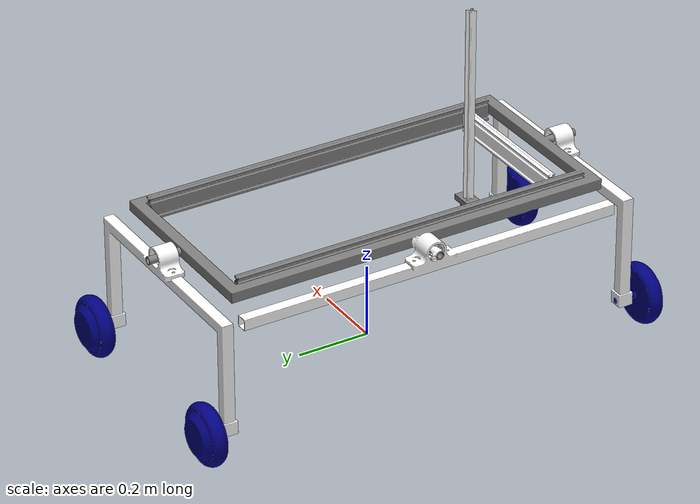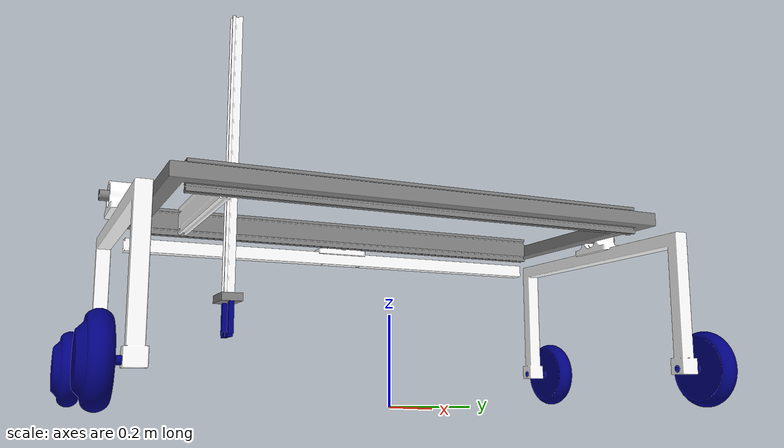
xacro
<?xml version="1.0"?>
<robot name="selena" xmlns:xacro="http://www.ros.org/wiki/xacro" >

    <xacro:include filename="common_properties.xacro" />
    <xacro:include filename="mobile_base.xacro" />
    <xacro:include filename="gripper.xacro" />
    <xacro:include filename="ros2_control.xacro" />

</robot>

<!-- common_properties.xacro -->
<robot xmlns:xacro="http://www.ros.org/wiki/xacro">

    <material name="white">
        <color rgba="1 1 1 1" />
    </material>

    <material name="grey">
        <color rgba="0.5 0.5 0.5 1"/>
    </material>

    <material name="blue">
        <color rgba="0 0 0.5 1"/>
    </material>

</robot>

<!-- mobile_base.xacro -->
<robot xmlns:xacro="http://www.ros.org/wiki/xacro" >

    <xacro:property name="frame_ground_offset" value="0.4125" />

    <xacro:property name="leg_offset_y" value="0.5795" />
    <xacro:property name="leg_offset_z" value="0.03" />

    <xacro:property name="back_bar_offset_x" value="0.305" />
    <xacro:property name="back_bar_offset_z" value="0.045" />

    <xacro:property name="front_wheel_offset_x" value="0.275" />
    <xacro:property name="back_wheel_offset_x" value="0.305" />
    <xacro:property name="wheel_offset_y" value="0.058" />
    <xacro:property name="wheel_offset_z" value="0.300" />

    <xacro:property name="z_axis_offset_x" value="0.025" />
    <xacro:property name="z_axis_offset_z" value="0.35" />

    <xacro:property name="x_axis_travel" value="0.845" />
    <xacro:property name="y_axis_travel" value="0.29" />
    <xacro:property name="z_axis_travel" value="0.25" />

    <xacro:property name="wheel_radius" value="0.0825" />

    ``----- LINKS -----

    <link name="base_footprint" />

    <link name="base_link">
        <visual>
            <geometry>
                <mesh filename="package://robot_description/meshes/main_frame.stl" scale="0.001 0.001 0.001" />
            </geometry>
            <origin xyz="0 0 0" rpy="0 0 0" />
            <material name="grey" />
        </visual>

        <collision>
            <origin xyz="0 0 0" rpy="0 0 0" />
            <geometry>
                <box size="0.614 1.338 0.06" />
            </geometry>
        </collision>

        <inertial>
            <origin xyz="0.0 0.0 0.0" rpy="0 0 0"/>
            <mass value="6.54888"/>
            <inertia
                ixx="0.9946" ixy="0.0" ixz="0.0"
                iyy="0.3190" iyz="0.0"
                izz="1.311" />
        </inertial>
    </link>

    <link name="gantry_origin_link"/>

    <link name="left_leg_link">
        <visual>
            <geometry>
                <mesh filename="package://robot_description/meshes/leg.stl" scale="0.001 0.001 0.001"/>
            </geometry>
            <origin xyz="0 0 0" rpy="0 0 0" />
            <material name="white" />
        </visual>

        <collision>
            <origin xyz="0 0 -0.15" rpy="0 0 0" />
            <geometry>
                <box size="0.625 0.054 0.37455" />
            </geometry>
        </collision>

        <inertial>
            <origin xyz="-0.014231 0.0 -0.143044" rpy="0 0 0"/>
            <mass value="2.33849"/>
            <inertia
                ixx="0.03813" ixy="0.0" ixz="0.0"
                iyy="0.1843" iyz="0.0"
                izz="0.1468" />
        </inertial>
    </link>

    <link name="right_leg_link">
        <visual>
            <geometry>
                <mesh filename="package://robot_description/meshes/leg.stl" scale="0.001 0.001 0.001"/>
            </geometry>
            <origin xyz="0 0 0" rpy="0 0 0" />
            <material name="white" />
        </visual>

        <collision>
            <origin xyz="0 0 -0.15" rpy="0 0 0" />
            <geometry>
                <box size="0.625 0.054 0.37455" />
            </geometry>
        </collision>

        <inertial>
            <origin xyz="-0.014231 0.0 -0.143044" rpy="0 0 0"/>
            <mass value="2.33849"/>
            <inertia
                ixx="0.03813" ixy="0.0" ixz="0.0"
                iyy="0.1843" iyz="0.0"
                izz="0.1468" />
        </inertial>
    </link>

    <link name="back_bar_link">
        <visual>
            <geometry>
                <mesh filename="package://robot_description/meshes/back_bar.stl" scale="0.001 0.001 0.001"/>
            </geometry>
            <origin xyz="0 0 0" rpy="0 0 0" />
            <material name="white" />
        </visual>

        <collision>
            <origin xyz="0 0 0.015" rpy="0 0 0" />
            <geometry>
                <box size="0.089 1.160 0.08955" />
            </geometry>
        </collision>

        <inertial>
            <origin xyz="0.0 0.0 0.007051" rpy="0 0 0"/>
            <mass value="1.16448"/>
            <inertia
                ixx="0.1067" ixy="0.0" ixz="0.0"
                iyy="0.0006767" iyz="0.0"
                izz="0.1064" />
        </inertial>
    </link>

    <link name="left_wheel_front_link">
        <visual>
            <geometry>
                <mesh filename="package://robot_description/meshes/motor_wheel.stl" scale="0.001 0.001 0.001"/>
            </geometry>
            <origin xyz="0 0 0" rpy="0 0 0" />
            <material name="blue" />
        </visual>

        <collision>
            <geometry>
                <sphere radius="${wheel_radius}"/>
            </geometry>
            <origin xyz="0 0 0" rpy="0 0 0" />
        </collision>

        <inertial>
            <origin xyz="0.0 -0.003705 0.0" rpy="0 0 0"/>

            <mass value="5.55023"/>

            <inertia
                ixx="0.01495" ixy="0.0" ixz="0.0"
                iyy="0.02667" iyz="0.0"
                izz="0.01495" />
        </inertial>
    </link>

    <link name="left_wheel_back_link">
        <visual>
            <geometry>
                <mesh filename="package://robot_description/meshes/motor_wheel.stl" scale="0.001 0.001 0.001"/>
            </geometry>
            <origin xyz="0 0 0" rpy="0 0 0" />
            <material name="blue" />
        </visual>

        <collision>
            <geometry>
                <sphere radius="${wheel_radius}"/>
            </geometry>
            <origin xyz="0 0 0" rpy="0 0 0" />
        </collision>

        <inertial>
            <origin xyz="0.0 -0.003705 0.0" rpy="0 0 0"/>

            <mass value="5.55023"/>

            <inertia
                ixx="0.01495" ixy="0.0" ixz="0.0"
                iyy="0.02667" iyz="0.0"
                izz="0.01495" />
        </inertial>
    </link>

    <link name="right_wheel_front_link">
        <visual>
            <geometry>
                <mesh filename="package://robot_description/meshes/motor_wheel.stl" scale="0.001 0.001 0.001"/>
            </geometry>
            <origin xyz="0 0 0" rpy="0 0 ${pi}" />
            <material name="blue" />
        </visual>

        <collision>
            <geometry>
                <sphere radius="${wheel_radius}"/>
            </geometry>
            <origin xyz="0 0 0" rpy="0 0 0" />
        </collision>

        <inertial>
            <origin xyz="0.0 0.003705 0.0" rpy="0 0 0"/>

            <mass value="5.55023"/>

            <inertia
                ixx="0.01495" ixy="0.0" ixz="0.0"
                iyy="0.02667" iyz="0.0"
                izz="0.01495" />
        </inertial>
    </link>

    <link name="right_wheel_back_link">
        <visual>
            <geometry>
                <mesh filename="package://robot_description/meshes/motor_wheel.stl" scale="0.001 0.001 0.001"/>
            </geometry>
            <origin xyz="0 0 0" rpy="0 0 ${pi}" />
            <material name="blue" />
        </visual>

        <collision>
            <geometry>
                <sphere radius="${wheel_radius}"/>
            </geometry>
            <origin xyz="0 0 0" rpy="0 0 0" />
        </collision>

        <inertial>
            <origin xyz="0.0 0.003705 0.0" rpy="0 0 0"/>

            <mass value="5.55023"/>

            <inertia
                ixx="0.01495" ixy="0.0" ixz="0.0"
                iyy="0.02667" iyz="0.0"
                izz="0.01495" />
        </inertial>
    </link>

    <link name="y_axis_link">
        <visual>
            <geometry>
                <mesh filename="package://robot_description/meshes/y_axis.stl" scale="0.001 0.001 0.001"/>
            </geometry>
            <origin xyz="0 -0.055 0" rpy="0 0 0" />
            <material name="white" />
        </visual>

        <collision>
            <origin xyz="0 0 0" rpy="0 0 0" />
            <geometry>
                <box size="0.4 0.02 0.06" />
            </geometry>
        </collision>

        <inertial>
            <origin xyz="0.0 0.0 0.0" rpy="0 0 0"/>
            <mass value="0.37599"/>
            <inertia
                ixx="0.0001717" ixy="0.0" ixz="0.0"
                iyy="0.005167"  iyz="0.0"
                izz="0.005032" />
        </inertial>
    </link>

    <link name="z_carriage_link">
        <inertial>
            <mass value="0.001" />
            <inertia ixx="0.0001" ixy="0" ixz="0" iyy="0.0001" iyz="0" izz="0.0001" />
        </inertial>
    </link>

    <link name="z_axis_link">
        <visual>
            <geometry>
                <mesh filename="package://robot_description/meshes/z_axis.stl" scale="0.001 0.001 0.001"/>
            </geometry>
            <origin xyz="0 0 0" rpy="0 0 0" />
            <material name="white" />
        </visual>

        <collision>
            <origin xyz="0 0 0.275" rpy="0 0 0" />
            <geometry>
                <box size="0.0195 0.0195 0.55" />
            </geometry>
        </collision>

        <inertial>
            <origin xyz="0.0 0.0 0.275" rpy="0 0 0"/>
            <mass value="0.23431"/>
            <inertia
                ixx="0.005916" ixy="0.0" ixz="0.0"
                iyy="0.005916" iyz="0.0"
                izz="0.00001918" />
        </inertial>
    </link>

    ``----- JOINTS -----

    <joint name="base_joint" type="fixed">
        <parent link="base_footprint" />
        <child link="base_link" />
        <origin xyz="0 0 ${frame_ground_offset}" rpy="0 0 0" />
    </joint>

    <joint name="gantry_origin_joint" type="fixed">
        <parent link="base_link"/>
        <child link="gantry_origin_link"/>
        <origin xyz="${y_axis_travel/2} ${-x_axis_travel/2} 0" rpy="0 0 ${pi/2}"/>
    </joint>

    <joint name="base_left_leg_joint" type="fixed">
        <parent link="base_link" />
        <child link="left_leg_link" />
        <origin xyz="0 ${-leg_offset_y} ${-leg_offset_z}" rpy="0 0 0" />
    </joint>

    <joint name="base_right_leg_joint" type="fixed">
        <parent link="base_link" />
        <child link="right_leg_link" />
        <origin xyz="0 ${leg_offset_y} ${-leg_offset_z}" rpy="0 0 0" />
    </joint>

    <joint name="base_back_bar_joint" type="fixed">
        <parent link="base_link" />
        <child link="back_bar_link" />
        <origin xyz="${-back_bar_offset_x} 0 ${-back_bar_offset_z}" rpy="0 0 0" />
    </joint>

    <joint name="left_leg_front_wheel_joint" type="continuous">
        <parent link="left_leg_link" />
        <child link="left_wheel_front_link" />
        <origin xyz="${front_wheel_offset_x} ${-wheel_offset_y} ${-wheel_offset_z}" rpy="0 0 0" />
        <axis xyz="0 1 0" rpy="0 0 0" />
    </joint>

    <joint name="left_leg_back_wheel_joint" type="continuous">
        <parent link="left_leg_link" />
        <child link="left_wheel_back_link" />
        <origin xyz="${-back_wheel_offset_x} ${-wheel_offset_y} ${-wheel_offset_z}" rpy="0 0 0" />
        <axis xyz="0 1 0" rpy="0 0 0" />
    </joint>

    <joint name="right_leg_front_wheel_joint" type="continuous">
        <parent link="right_leg_link" />
        <child link="right_wheel_front_link" />
        <origin xyz="${front_wheel_offset_x} ${wheel_offset_y} ${-wheel_offset_z}" rpy="0 0 0" />
        <axis xyz="0 1 0" rpy="0 0 0" />
    </joint>

    <joint name="right_leg_back_wheel_joint" type="continuous">
        <parent link="right_leg_link" />
        <child link="right_wheel_back_link" />
        <origin xyz="${-back_wheel_offset_x} ${wheel_offset_y} ${-wheel_offset_z}" rpy="0 0 0" />
        <axis xyz="0 1 0" rpy="0 0 0" />
    </joint>

    <joint name="x_axis_joint" type="prismatic">
        <parent link="gantry_origin_link" />
        <child link="y_axis_link" />
        <origin xyz="0 0 0" rpy="0 0 0" />
        <axis xyz="1 0 0" rpy="0 0 0" />
        <limit lower="-0.005" upper="${x_axis_travel}" velocity="0.15" effort="100" />
    </joint>

    <joint name="y_axis_joint" type="prismatic">
        <parent link="y_axis_link" />
        <child link="z_carriage_link" />
        <origin xyz="${z_axis_offset_x} 0 ${z_axis_offset_z}" rpy="0 0 0" />
        <axis xyz="0 1 0" rpy="0 0 0" />
        <limit lower="-0.005" upper="${y_axis_travel}" velocity="0.038" effort="100" />
    </joint>

    <joint name="z_axis_joint" type="prismatic">
        <parent link="z_carriage_link" />
        <child link="z_axis_link" />
        <origin xyz="0 0 0" rpy="${pi} 0 0" />
        <axis xyz="0 0 1" rpy="0 0 0" />
        <limit lower="-0.005" upper="${z_axis_travel}" velocity="0.038" effort="100" />
    </joint>

</robot>

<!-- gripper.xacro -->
<robot xmlns:xacro="http://www.ros.org/wiki/xacro">

    <xacro:property name="base_x"          value="0.040" />
    <xacro:property name="base_y"          value="0.070" />
    <xacro:property name="base_z"          value="0.015" />

    <xacro:property name="arm_x"           value="0.010" />
    <xacro:property name="arm_y"           value="0.010" />
    <xacro:property name="arm_z"           value="0.060" />

    <xacro:property name="tip_x"           value="0.010" />
    <xacro:property name="tip_y"           value="0.020" />
    <xacro:property name="tip_z"           value="0.010" />

    <xacro:property name="arm_offset_y"    value="0.025" />
    <xacro:property name="finger_stroke"   value="0.020" />
    <xacro:property name="z_column_length" value="0.55"  />

    <link name="gripper_base_link">
        <visual>
            <geometry><box size="${base_x} ${base_y} ${base_z}" /></geometry>
            <origin xyz="0 0 ${base_z/2}" rpy="0 0 0" />
            <material name="grey" />
        </visual>
        <collision>
            <geometry><box size="${base_x} ${base_y} ${base_z}" /></geometry>
            <origin xyz="0 0 ${base_z/2}" rpy="0 0 0" />
        </collision>
        <inertial>
            <mass value="0.05" />
            <inertia ixx="2.29e-5" ixy="0" ixz="0"
                     iyy="1.04e-5" iyz="0" izz="2.96e-5" />
        </inertial>
    </link>

    <!-- Left jaw — vertical arm + inward tip -->
    <link name="left_finger_link">
        <visual>
            <geometry><box size="${arm_x} ${arm_y} ${arm_z}" /></geometry>
            <origin xyz="0 0 ${arm_z/2}" rpy="0 0 0" />
            <material name="blue" />
        </visual>
        <visual>
            <geometry><box size="${tip_x} ${tip_y} ${tip_z}" /></geometry>
            <origin xyz="0 ${-tip_y/2} ${arm_z}" rpy="0 0 0" />
            <material name="blue" />
        </visual>
        <collision>
            <geometry><box size="${arm_x} ${arm_y} ${arm_z}" /></geometry>
            <origin xyz="0 0 ${arm_z/2}" rpy="0 0 0" />
        </collision>
        <inertial>
            <mass value="0.015" />
            <inertia ixx="4.6e-6" ixy="0" ixz="0"
                     iyy="4.6e-6" iyz="0" izz="2.5e-8" />
        </inertial>
    </link>

    <!-- Right jaw — vertical arm + inward tip (mirrored) -->
    <link name="right_finger_link">
        <visual>
            <geometry><box size="${arm_x} ${arm_y} ${arm_z}" /></geometry>
            <origin xyz="0 0 ${arm_z/2}" rpy="0 0 0" />
            <material name="blue" />
        </visual>
        <visual>
            <geometry><box size="${tip_x} ${tip_y} ${tip_z}" /></geometry>
            <origin xyz="0 ${tip_y/2} ${arm_z}" rpy="0 0 0" />
            <material name="blue" />
        </visual>
        <collision>
            <geometry><box size="${arm_x} ${arm_y} ${arm_z}" /></geometry>
            <origin xyz="0 0 ${arm_z/2}" rpy="0 0 0" />
        </collision>
        <inertial>
            <mass value="0.015" />
            <inertia ixx="4.6e-6" ixy="0" ixz="0"
                     iyy="4.6e-6" iyz="0" izz="2.5e-8" />
        </inertial>
    </link>

    <joint name="gripper_base_joint" type="fixed">
        <parent link="z_axis_link" />
        <child link="gripper_base_link" />
        <origin xyz="0 0 ${z_column_length}" rpy="0 0 0" />
    </joint>

    <!-- Left finger opens in +Y direction (away from centre) -->
    <joint name="left_finger_joint" type="prismatic">
        <parent link="gripper_base_link" />
        <child link="left_finger_link" />
        <origin xyz="0 ${arm_offset_y} ${base_z}" rpy="0 0 0" />
        <axis xyz="0 1 0" />
        <limit lower="0.0" upper="${finger_stroke}" velocity="0.05" effort="10" />
    </joint>

    <!-- Right finger opens in -Y direction (away from centre) -->
    <joint name="right_finger_joint" type="prismatic">
        <parent link="gripper_base_link" />
        <child link="right_finger_link" />
        <origin xyz="0 ${-arm_offset_y} ${base_z}" rpy="0 0 0" />
        <axis xyz="0 -1 0" />
        <limit lower="0.0" upper="${finger_stroke}" velocity="0.05" effort="10" />
    </joint>

</robot>
